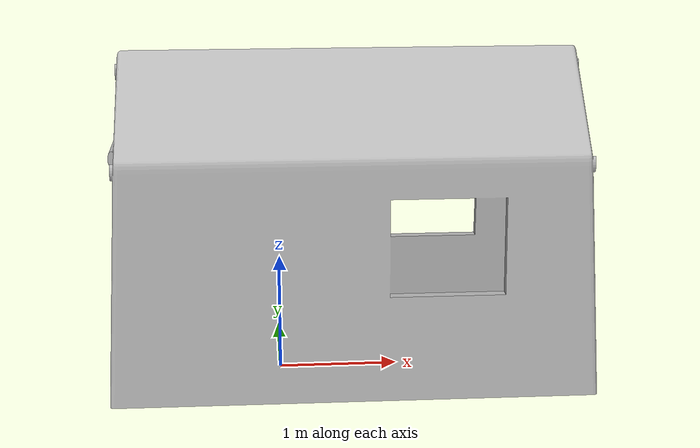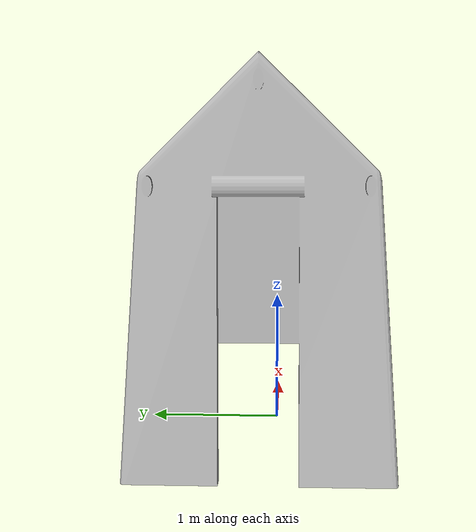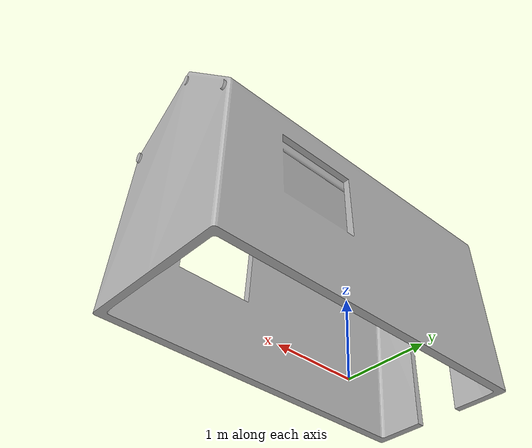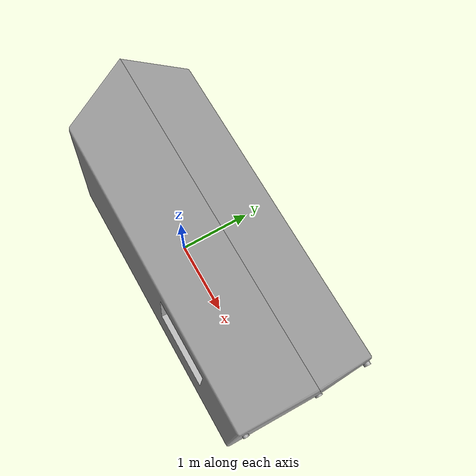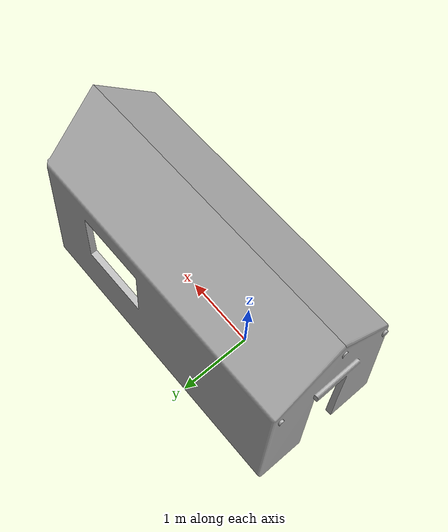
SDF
<?xml version="1.0" ?>
<sdf version='1.5'>
  <model name='tent_add'>
    <static>true</static>
      <link name='tent_add'>
        <pose frame=''>0 0 0 1.57 0 0</pose>
         <collision name='tent_add'>
          <geometry>
            <mesh>
              <scale>0.02 0.04 0.02</scale>
              <uri>model://tent_add/model.dae</uri>
            </mesh>
          </geometry>
          <max_contacts>10</max_contacts>
        </collision>
        <visual name='tent_add'>
        <cast_shadows>false</cast_shadows>
          <geometry>
            <mesh>
              <scale>0.02 0.04 0.02</scale>
              <uri>model://tent_add/model.dae</uri>
            </mesh>
          </geometry>
          <material>
            <script>
              <name>tent_add</name>
              <uri>model://tent_add/model.dae</uri>
            </script>
          </material>
        </visual>
      </link>
  </model>
</sdf>
